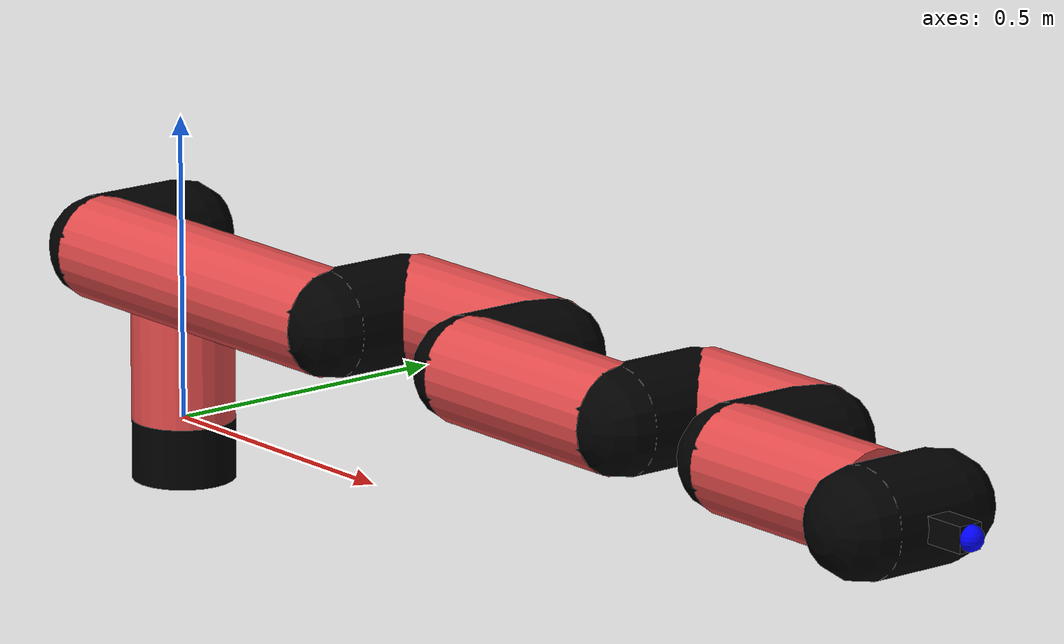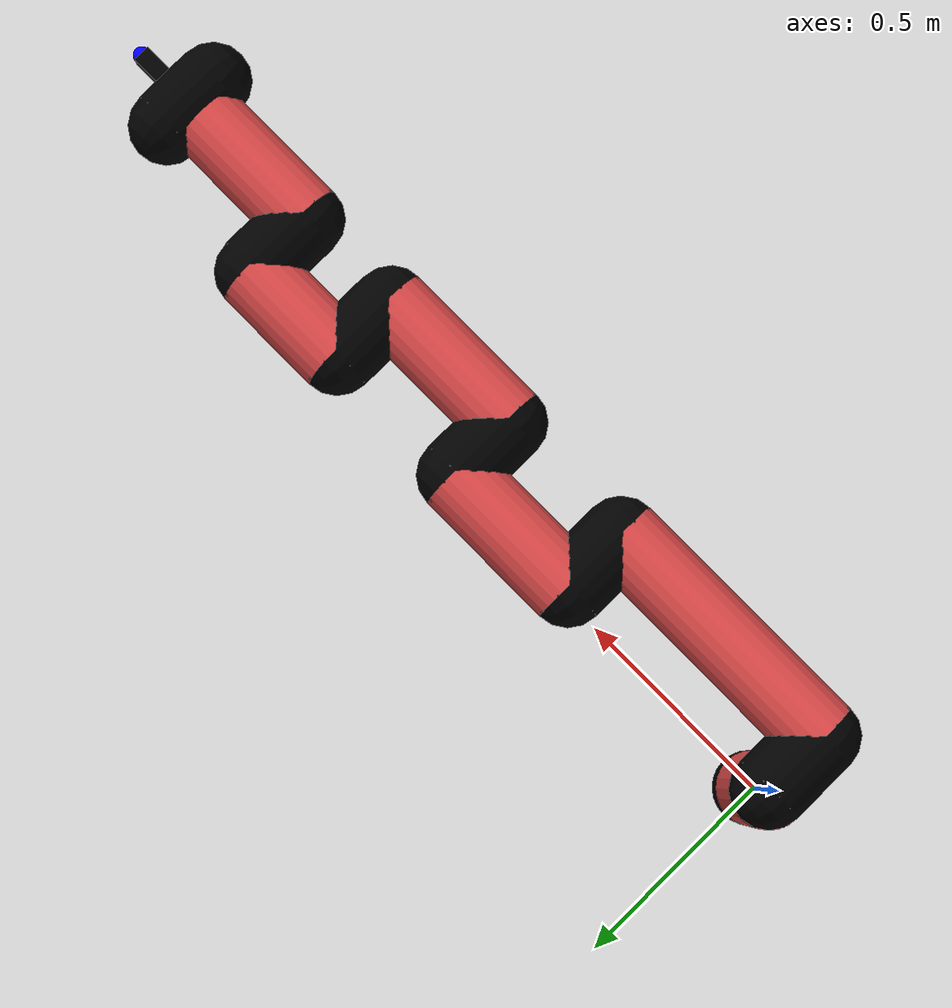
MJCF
<mujoco model="manipulator">
		<compiler angle="degree" coordinate="local" inertiafromgeom="auto" meshdir="meshes/"/>
		<option gravity="0 0 0" integrator="RK4" iterations="30" timestep="0.01"/>

		<default>
		<joint armature="1" limited="true" stiffness="10" damping="15" frictionloss="5.0"/>
		<geom conaffinity="1" condim="3" contype="1" friction=".5 .1 .1" margin="0.002"/>
		<motor ctrllimited="true"/>
		<position ctrllimited="true"/>
		</default>

		<asset>
		<texture builtin="gradient" height="100" rgb1="1.0 1.0 1.0" rgb2="1.0 1.0 1.0" type="skybox" width="100"/>
		<texture builtin="flat" height="32" name="arm_tex" rgb1="0.9 0.3 0.3" type="2d" width="32"/>
		<texture builtin="flat" height="32" name="gripper_tex" rgb1="0.0 0.0 0.0" type="cube" width="32"/>

		<material name="arm_mat" shininess="0.1" specular="0.1" texture="arm_tex"/>
		<material name="gripper_mat" shininess="1" specular="1" texture="gripper_tex"/>
		</asset>

		<worldbody>
		<light cutoff="45" diffuse=".8 .8 .8" dir="0 0.16 -1" directional="false" name="light" pos="0 -2.0 8.0" specular="0.3 0.3 0.3"/>

		<body name="base_link" pos="0 0 -0.1">
		<geom fromto="0 0 0 0 0 0.1" material="arm_mat" name="base_link" rgba="0.0 0.0 0.0 1" size="0.085" type="cylinder"/>
		</body>

		<body name="l1" pos="0 0 0">
<geom fromto="0 0 0 0 0 0.31" material="arm_mat" name="l1" rgba="0.9 0.3 0.3 1" size="0.085" type="cylinder"/>
<geom fromto="0 0 0.31 0 -0.16 0.31" material="arm_mat" name="l1_ex" rgba="0.0 0.0 0.0 1" size="0.085" type="capsule"/>
<joint axis="0 0 1" name="j1" pos="0 0 0" range="-90 90" damping="27.07" frictionloss="11.49"/>

<body name="l2" pos="0 -0.16 0.31">
<geom fromto="0 0 0 0.6 0 0" material="arm_mat" name="l2" rgba="0.9 0.3 0.3 1" size="0.085" type="cylinder"/>
<geom fromto="0.6 0 0 0.6 0.16 0" material="arm_mat" name="l2_ex" rgba="0.0 0.0 0.0 1" size="0.085" type="capsule"/>
<joint axis="0.0 1.0 0.0" name="j2" pos="0 0 0" range="-90 60" damping="27.72" frictionloss="12.19"/>

<body name="l3" pos="0.6 0.16 0">
<geom fromto="0 0 0 0.34 0 0" material="arm_mat" name="l3" rgba="0.9 0.3 0.3 1" size="0.085" type="cylinder"/>
<geom fromto="0.34 0 0 0.34 -0.16 0" material="arm_mat" name="l3_ex" rgba="0.0 0.0 0.0 1" size="0.085" type="capsule"/>
<joint axis="0.0 1.0 0.0" name="j3" pos="0 0 0" range="-30 60" damping="35.14" frictionloss="9.78"/>

<body name="l4" pos="0.34 -0.16 0">
<geom fromto="0 0 0 0.36 0 0" material="arm_mat" name="l4" rgba="0.9 0.3 0.3 1" size="0.085" type="cylinder"/>
<geom fromto="0.36 0 0 0.36 0.16 0" material="arm_mat" name="l4_ex" rgba="0.0 0.0 0.0 1" size="0.085" type="capsule"/>
<joint axis="0.0 1.0 0.0" name="j4" pos="0 0 0" range="-30 60" damping="37.06" frictionloss="10.5"/>

<body name="l5" pos="0.36 0.16 0">
<geom fromto="0 0 0 0.26 0 0" material="arm_mat" name="l5" rgba="0.9 0.3 0.3 1" size="0.085" type="cylinder"/>
<geom fromto="0.26 0 0 0.26 -0.16 0" material="arm_mat" name="l5_ex" rgba="0.0 0.0 0.0 1" size="0.085" type="capsule"/>
<joint axis="0.0 1.0 0.0" name="j5" pos="0 0 0" range="-30 60" damping="25.46" frictionloss="8.2"/>

<body name="l6" pos="0.26 -0.16 0">
<geom fromto="0 0 0 0.31 0 0" material="arm_mat" name="l6" rgba="0.9 0.3 0.3 1" size="0.085" type="cylinder"/>
<joint axis="0.0 1.0 0.0" name="j6" pos="0 0 0" range="-30 60" damping="37.34" frictionloss="7.91"/>

<body name="gripper" pos="0.31 0 0">
<geom fromto="0.05 -0.07 0 0.05 0.07 0" material="gripper_mat" name="gripper" rgba="0.0 0.0 0.0 1" size="0.085" type="capsule"/><joint axis="1 0 0" name="j7" pos="0 0 0" range="-90 90" damping="15" frictionloss="5.0"/><body name="finger" pos="0.1 0 0">
<geom fromto="0 0.0 0 0.1 0.0 0" material="gripper_mat" name="finger" rgba="0.0 0.0 0.0 1" size="0.020 0.06 0.06" type="box"/>
</body>
<site name="current" pos="0.2 0. 0.0" rgba="0. 0. 1.0 1" size="0.02" type="sphere"/>
</body>
</body>
</body>
</body>
</body>
</body>
</body>
</worldbody>
<actuator>
<motor ctrllimited="true" ctrlrange="-1.0 1.0" joint="j1" gear="88.01"/>
<motor ctrllimited="true" ctrlrange="-1.0 1.0" joint="j2" gear="87.79"/>
<motor ctrllimited="true" ctrlrange="-1.0 1.0" joint="j3" gear="93.57"/>
<motor ctrllimited="true" ctrlrange="-1.0 1.0" joint="j4" gear="62.47"/>
<motor ctrllimited="true" ctrlrange="-1.0 1.0" joint="j5" gear="75.14"/>
<motor ctrllimited="true" ctrlrange="-1.0 1.0" joint="j6" gear="98.29"/>
<motor ctrllimited="true" ctrlrange="-1.0 1.0" joint="j7" gear="80"/>
</actuator>
</mujoco>
